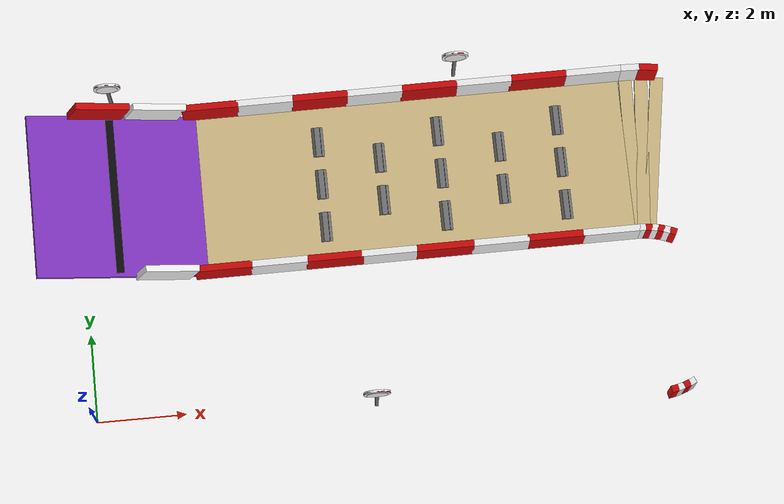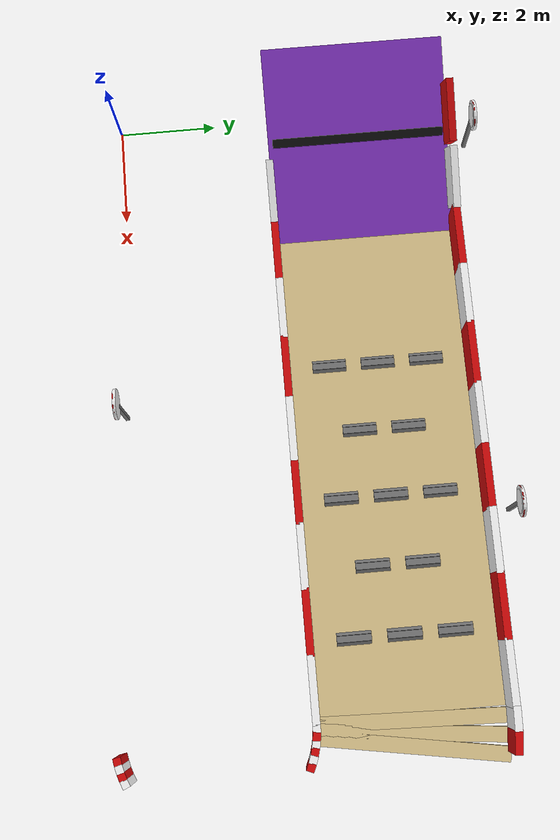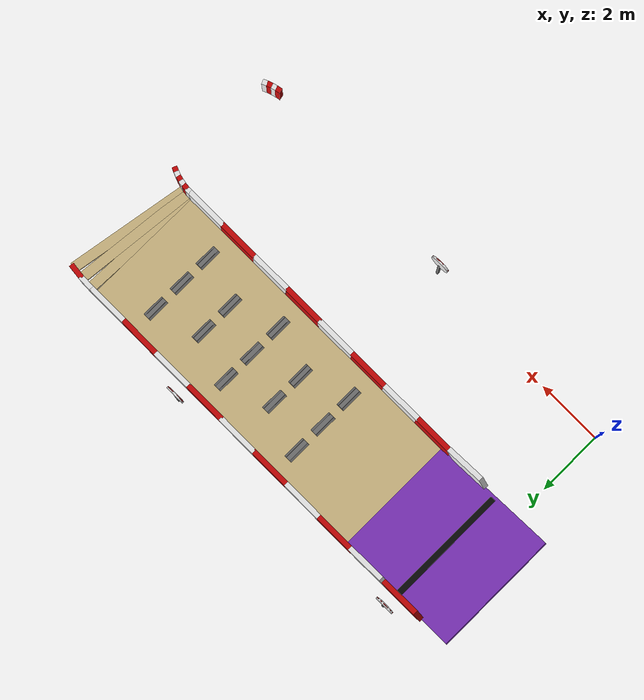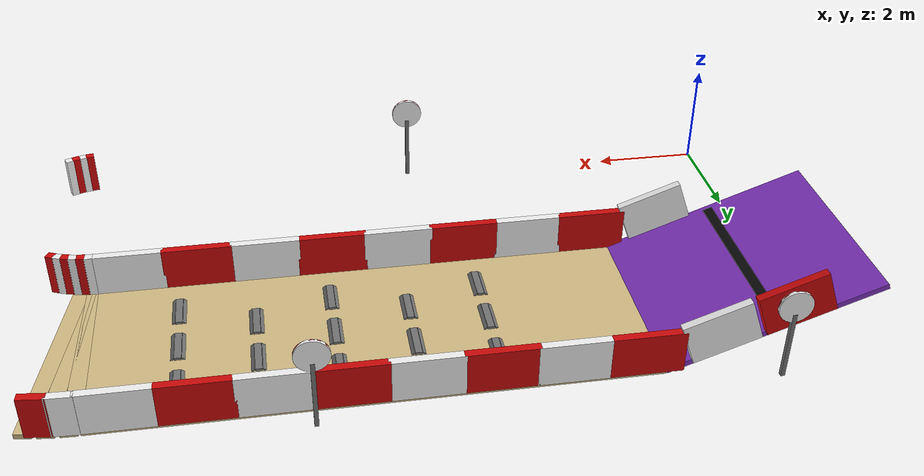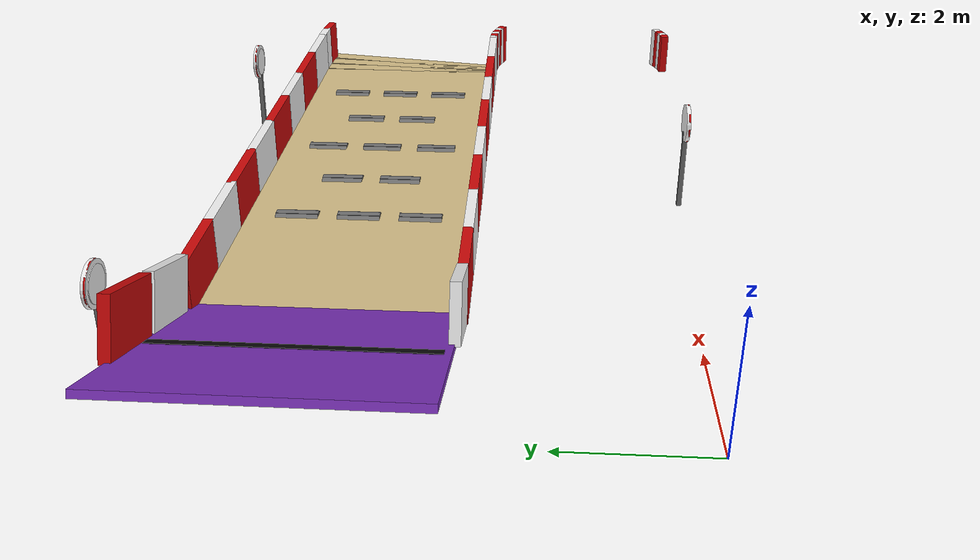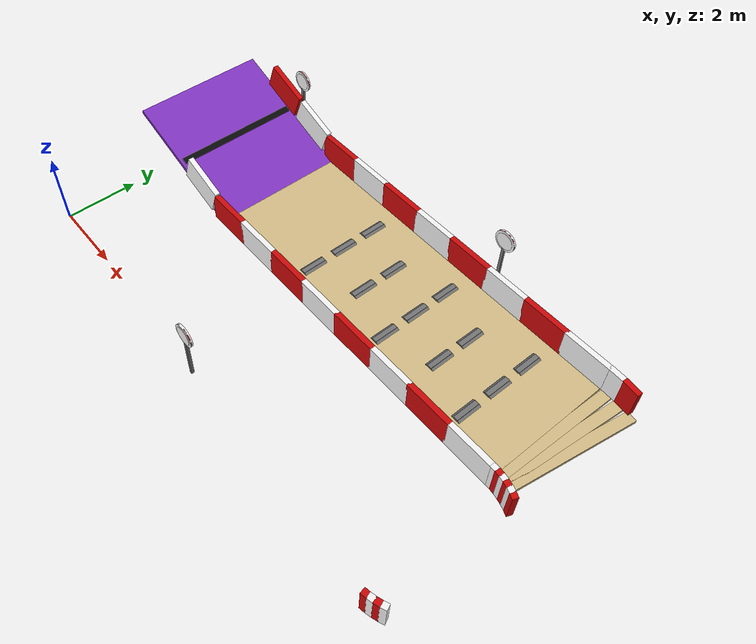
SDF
<sdf version="1.6">
 <world name="evrenos_teknofest_2026">
  <include><uri>model://sun</uri></include>
  <model name="main_course">
   <static>true</static>
   <link name="right_turn_road_45">
    <pose>13.110875 4.949875 -0.050000 0.000000 0.000000 2.977968</pose>
    <collision name="right_turn_road_45_collision">
     <geometry><box><size>0.294500 3.750000 0.100000</size></box></geometry>
    </collision>
    <visual name="right_turn_road_45_visual">
     <geometry><box><size>0.294500 3.750000 0.100000</size></box></geometry>
     <material><ambient>0.82 0.73 0.52 1</ambient><diffuse>0.82 0.73 0.52 1</diffuse></material>
    </visual>
   </link>
   <link name="right_turn_road_46">
    <pose>12.867625 4.982000 -0.050000 0.000000 0.000000 3.043418</pose>
    <collision name="right_turn_road_46_collision">
     <geometry><box><size>0.294500 3.750000 0.100000</size></box></geometry>
    </collision>
    <visual name="right_turn_road_46_visual">
     <geometry><box><size>0.294500 3.750000 0.100000</size></box></geometry>
     <material><ambient>0.82 0.73 0.52 1</ambient><diffuse>0.82 0.73 0.52 1</diffuse></material>
    </visual>
   </link>
   <link name="right_turn_road_47">
    <pose>12.622750 4.998000 -0.050000 0.000000 0.000000 3.108868</pose>
    <collision name="right_turn_road_47_collision">
     <geometry><box><size>0.294500 3.750000 0.100000</size></box></geometry>
    </collision>
    <visual name="right_turn_road_47_visual">
     <geometry><box><size>0.294500 3.750000 0.100000</size></box></geometry>
     <material><ambient>0.82 0.73 0.52 1</ambient><diffuse>0.82 0.73 0.52 1</diffuse></material>
    </visual>
   </link>
   <link name="top_rough_base_0">
    <pose>7.625000 5.000000 -0.050000 0.000000 0.000000 0.000000</pose>
    <collision name="top_rough_base_0_collision">
     <geometry><box><size>9.750000 3.750000 0.100000</size></box></geometry>
    </collision>
    <visual name="top_rough_base_0_visual">
     <geometry><box><size>9.750000 3.750000 0.100000</size></box></geometry>
     <material><ambient>0.82 0.73 0.52 1</ambient><diffuse>0.82 0.73 0.52 1</diffuse></material>
    </visual>
   </link>
   <link name="bump_0_up">
    <pose>10.906250 4.000000 0.012500 0.000000 -0.674741 0.000000</pose>
    <collision name="bump_0_up_collision">
     <geometry><box><size>0.080027 0.687500 0.025000</size></box></geometry>
    </collision>
    <visual name="bump_0_up_visual">
     <geometry><box><size>0.080027 0.687500 0.025000</size></box></geometry>
     <material><ambient>0.45 0.45 0.45 1</ambient><diffuse>0.45 0.45 0.45 1</diffuse></material>
    </visual>
   </link>
   <link name="bump_0_top">
    <pose>11.000000 4.000000 0.025000 0.000000 0.000000 0.000000</pose>
    <collision name="bump_0_top_collision">
     <geometry><box><size>0.125000 0.687500 0.050000</size></box></geometry>
    </collision>
    <visual name="bump_0_top_visual">
     <geometry><box><size>0.125000 0.687500 0.050000</size></box></geometry>
     <material><ambient>0.45 0.45 0.45 1</ambient><diffuse>0.45 0.45 0.45 1</diffuse></material>
    </visual>
   </link>
   <link name="bump_0_down">
    <pose>11.093750 4.000000 0.012500 0.000000 0.674741 0.000000</pose>
    <collision name="bump_0_down_collision">
     <geometry><box><size>0.080027 0.687500 0.025000</size></box></geometry>
    </collision>
    <visual name="bump_0_down_visual">
     <geometry><box><size>0.080027 0.687500 0.025000</size></box></geometry>
     <material><ambient>0.45 0.45 0.45 1</ambient><diffuse>0.45 0.45 0.45 1</diffuse></material>
    </visual>
   </link>
   <link name="bump_1_up">
    <pose>10.906250 5.000000 0.012500 0.000000 -0.674741 0.000000</pose>
    <collision name="bump_1_up_collision">
     <geometry><box><size>0.080027 0.687500 0.025000</size></box></geometry>
    </collision>
    <visual name="bump_1_up_visual">
     <geometry><box><size>0.080027 0.687500 0.025000</size></box></geometry>
     <material><ambient>0.45 0.45 0.45 1</ambient><diffuse>0.45 0.45 0.45 1</diffuse></material>
    </visual>
   </link>
   <link name="bump_1_top">
    <pose>11.000000 5.000000 0.025000 0.000000 0.000000 0.000000</pose>
    <collision name="bump_1_top_collision">
     <geometry><box><size>0.125000 0.687500 0.050000</size></box></geometry>
    </collision>
    <visual name="bump_1_top_visual">
     <geometry><box><size>0.125000 0.687500 0.050000</size></box></geometry>
     <material><ambient>0.45 0.45 0.45 1</ambient><diffuse>0.45 0.45 0.45 1</diffuse></material>
    </visual>
   </link>
   <link name="bump_1_down">
    <pose>11.093750 5.000000 0.012500 0.000000 0.674741 0.000000</pose>
    <collision name="bump_1_down_collision">
     <geometry><box><size>0.080027 0.687500 0.025000</size></box></geometry>
    </collision>
    <visual name="bump_1_down_visual">
     <geometry><box><size>0.080027 0.687500 0.025000</size></box></geometry>
     <material><ambient>0.45 0.45 0.45 1</ambient><diffuse>0.45 0.45 0.45 1</diffuse></material>
    </visual>
   </link>
   <link name="bump_2_up">
    <pose>10.906250 6.000000 0.012500 0.000000 -0.674741 0.000000</pose>
    <collision name="bump_2_up_collision">
     <geometry><box><size>0.080027 0.687500 0.025000</size></box></geometry>
    </collision>
    <visual name="bump_2_up_visual">
     <geometry><box><size>0.080027 0.687500 0.025000</size></box></geometry>
     <material><ambient>0.45 0.45 0.45 1</ambient><diffuse>0.45 0.45 0.45 1</diffuse></material>
    </visual>
   </link>
   <link name="bump_2_top">
    <pose>11.000000 6.000000 0.025000 0.000000 0.000000 0.000000</pose>
    <collision name="bump_2_top_collision">
     <geometry><box><size>0.125000 0.687500 0.050000</size></box></geometry>
    </collision>
    <visual name="bump_2_top_visual">
     <geometry><box><size>0.125000 0.687500 0.050000</size></box></geometry>
     <material><ambient>0.45 0.45 0.45 1</ambient><diffuse>0.45 0.45 0.45 1</diffuse></material>
    </visual>
   </link>
   <link name="bump_2_down">
    <pose>11.093750 6.000000 0.012500 0.000000 0.674741 0.000000</pose>
    <collision name="bump_2_down_collision">
     <geometry><box><size>0.080027 0.687500 0.025000</size></box></geometry>
    </collision>
    <visual name="bump_2_down_visual">
     <geometry><box><size>0.080027 0.687500 0.025000</size></box></geometry>
     <material><ambient>0.45 0.45 0.45 1</ambient><diffuse>0.45 0.45 0.45 1</diffuse></material>
    </visual>
   </link>
   <link name="bump_3_up">
    <pose>9.531250 4.500000 0.012500 0.000000 -0.674741 0.000000</pose>
    <collision name="bump_3_up_collision">
     <geometry><box><size>0.080027 0.687500 0.025000</size></box></geometry>
    </collision>
    <visual name="bump_3_up_visual">
     <geometry><box><size>0.080027 0.687500 0.025000</size></box></geometry>
     <material><ambient>0.45 0.45 0.45 1</ambient><diffuse>0.45 0.45 0.45 1</diffuse></material>
    </visual>
   </link>
   <link name="bump_3_top">
    <pose>9.625000 4.500000 0.025000 0.000000 0.000000 0.000000</pose>
    <collision name="bump_3_top_collision">
     <geometry><box><size>0.125000 0.687500 0.050000</size></box></geometry>
    </collision>
    <visual name="bump_3_top_visual">
     <geometry><box><size>0.125000 0.687500 0.050000</size></box></geometry>
     <material><ambient>0.45 0.45 0.45 1</ambient><diffuse>0.45 0.45 0.45 1</diffuse></material>
    </visual>
   </link>
   <link name="bump_3_down">
    <pose>9.718750 4.500000 0.012500 0.000000 0.674741 0.000000</pose>
    <collision name="bump_3_down_collision">
     <geometry><box><size>0.080027 0.687500 0.025000</size></box></geometry>
    </collision>
    <visual name="bump_3_down_visual">
     <geometry><box><size>0.080027 0.687500 0.025000</size></box></geometry>
     <material><ambient>0.45 0.45 0.45 1</ambient><diffuse>0.45 0.45 0.45 1</diffuse></material>
    </visual>
   </link>
   <link name="bump_4_up">
    <pose>9.531250 5.500000 0.012500 0.000000 -0.674741 0.000000</pose>
    <collision name="bump_4_up_collision">
     <geometry><box><size>0.080027 0.687500 0.025000</size></box></geometry>
    </collision>
    <visual name="bump_4_up_visual">
     <geometry><box><size>0.080027 0.687500 0.025000</size></box></geometry>
     <material><ambient>0.45 0.45 0.45 1</ambient><diffuse>0.45 0.45 0.45 1</diffuse></material>
    </visual>
   </link>
   <link name="bump_4_top">
    <pose>9.625000 5.500000 0.025000 0.000000 0.000000 0.000000</pose>
    <collision name="bump_4_top_collision">
     <geometry><box><size>0.125000 0.687500 0.050000</size></box></geometry>
    </collision>
    <visual name="bump_4_top_visual">
     <geometry><box><size>0.125000 0.687500 0.050000</size></box></geometry>
     <material><ambient>0.45 0.45 0.45 1</ambient><diffuse>0.45 0.45 0.45 1</diffuse></material>
    </visual>
   </link>
   <link name="bump_4_down">
    <pose>9.718750 5.500000 0.012500 0.000000 0.674741 0.000000</pose>
    <collision name="bump_4_down_collision">
     <geometry><box><size>0.080027 0.687500 0.025000</size></box></geometry>
    </collision>
    <visual name="bump_4_down_visual">
     <geometry><box><size>0.080027 0.687500 0.025000</size></box></geometry>
     <material><ambient>0.45 0.45 0.45 1</ambient><diffuse>0.45 0.45 0.45 1</diffuse></material>
    </visual>
   </link>
   <link name="bump_5_up">
    <pose>8.156250 4.000000 0.012500 0.000000 -0.674741 0.000000</pose>
    <collision name="bump_5_up_collision">
     <geometry><box><size>0.080027 0.687500 0.025000</size></box></geometry>
    </collision>
    <visual name="bump_5_up_visual">
     <geometry><box><size>0.080027 0.687500 0.025000</size></box></geometry>
     <material><ambient>0.45 0.45 0.45 1</ambient><diffuse>0.45 0.45 0.45 1</diffuse></material>
    </visual>
   </link>
   <link name="bump_5_top">
    <pose>8.250000 4.000000 0.025000 0.000000 0.000000 0.000000</pose>
    <collision name="bump_5_top_collision">
     <geometry><box><size>0.125000 0.687500 0.050000</size></box></geometry>
    </collision>
    <visual name="bump_5_top_visual">
     <geometry><box><size>0.125000 0.687500 0.050000</size></box></geometry>
     <material><ambient>0.45 0.45 0.45 1</ambient><diffuse>0.45 0.45 0.45 1</diffuse></material>
    </visual>
   </link>
   <link name="bump_5_down">
    <pose>8.343750 4.000000 0.012500 0.000000 0.674741 0.000000</pose>
    <collision name="bump_5_down_collision">
     <geometry><box><size>0.080027 0.687500 0.025000</size></box></geometry>
    </collision>
    <visual name="bump_5_down_visual">
     <geometry><box><size>0.080027 0.687500 0.025000</size></box></geometry>
     <material><ambient>0.45 0.45 0.45 1</ambient><diffuse>0.45 0.45 0.45 1</diffuse></material>
    </visual>
   </link>
   <link name="bump_6_up">
    <pose>8.156250 5.000000 0.012500 0.000000 -0.674741 0.000000</pose>
    <collision name="bump_6_up_collision">
     <geometry><box><size>0.080027 0.687500 0.025000</size></box></geometry>
    </collision>
    <visual name="bump_6_up_visual">
     <geometry><box><size>0.080027 0.687500 0.025000</size></box></geometry>
     <material><ambient>0.45 0.45 0.45 1</ambient><diffuse>0.45 0.45 0.45 1</diffuse></material>
    </visual>
   </link>
   <link name="bump_6_top">
    <pose>8.250000 5.000000 0.025000 0.000000 0.000000 0.000000</pose>
    <collision name="bump_6_top_collision">
     <geometry><box><size>0.125000 0.687500 0.050000</size></box></geometry>
    </collision>
    <visual name="bump_6_top_visual">
     <geometry><box><size>0.125000 0.687500 0.050000</size></box></geometry>
     <material><ambient>0.45 0.45 0.45 1</ambient><diffuse>0.45 0.45 0.45 1</diffuse></material>
    </visual>
   </link>
   <link name="bump_6_down">
    <pose>8.343750 5.000000 0.012500 0.000000 0.674741 0.000000</pose>
    <collision name="bump_6_down_collision">
     <geometry><box><size>0.080027 0.687500 0.025000</size></box></geometry>
    </collision>
    <visual name="bump_6_down_visual">
     <geometry><box><size>0.080027 0.687500 0.025000</size></box></geometry>
     <material><ambient>0.45 0.45 0.45 1</ambient><diffuse>0.45 0.45 0.45 1</diffuse></material>
    </visual>
   </link>
   <link name="bump_7_up">
    <pose>8.156250 6.000000 0.012500 0.000000 -0.674741 0.000000</pose>
    <collision name="bump_7_up_collision">
     <geometry><box><size>0.080027 0.687500 0.025000</size></box></geometry>
    </collision>
    <visual name="bump_7_up_visual">
     <geometry><box><size>0.080027 0.687500 0.025000</size></box></geometry>
     <material><ambient>0.45 0.45 0.45 1</ambient><diffuse>0.45 0.45 0.45 1</diffuse></material>
    </visual>
   </link>
   <link name="bump_7_top">
    <pose>8.250000 6.000000 0.025000 0.000000 0.000000 0.000000</pose>
    <collision name="bump_7_top_collision">
     <geometry><box><size>0.125000 0.687500 0.050000</size></box></geometry>
    </collision>
    <visual name="bump_7_top_visual">
     <geometry><box><size>0.125000 0.687500 0.050000</size></box></geometry>
     <material><ambient>0.45 0.45 0.45 1</ambient><diffuse>0.45 0.45 0.45 1</diffuse></material>
    </visual>
   </link>
   <link name="bump_7_down">
    <pose>8.343750 6.000000 0.012500 0.000000 0.674741 0.000000</pose>
    <collision name="bump_7_down_collision">
     <geometry><box><size>0.080027 0.687500 0.025000</size></box></geometry>
    </collision>
    <visual name="bump_7_down_visual">
     <geometry><box><size>0.080027 0.687500 0.025000</size></box></geometry>
     <material><ambient>0.45 0.45 0.45 1</ambient><diffuse>0.45 0.45 0.45 1</diffuse></material>
    </visual>
   </link>
   <link name="bump_8_up">
    <pose>6.781250 4.500000 0.012500 0.000000 -0.674741 0.000000</pose>
    <collision name="bump_8_up_collision">
     <geometry><box><size>0.080027 0.687500 0.025000</size></box></geometry>
    </collision>
    <visual name="bump_8_up_visual">
     <geometry><box><size>0.080027 0.687500 0.025000</size></box></geometry>
     <material><ambient>0.45 0.45 0.45 1</ambient><diffuse>0.45 0.45 0.45 1</diffuse></material>
    </visual>
   </link>
   <link name="bump_8_top">
    <pose>6.875000 4.500000 0.025000 0.000000 0.000000 0.000000</pose>
    <collision name="bump_8_top_collision">
     <geometry><box><size>0.125000 0.687500 0.050000</size></box></geometry>
    </collision>
    <visual name="bump_8_top_visual">
     <geometry><box><size>0.125000 0.687500 0.050000</size></box></geometry>
     <material><ambient>0.45 0.45 0.45 1</ambient><diffuse>0.45 0.45 0.45 1</diffuse></material>
    </visual>
   </link>
   <link name="bump_8_down">
    <pose>6.968750 4.500000 0.012500 0.000000 0.674741 0.000000</pose>
    <collision name="bump_8_down_collision">
     <geometry><box><size>0.080027 0.687500 0.025000</size></box></geometry>
    </collision>
    <visual name="bump_8_down_visual">
     <geometry><box><size>0.080027 0.687500 0.025000</size></box></geometry>
     <material><ambient>0.45 0.45 0.45 1</ambient><diffuse>0.45 0.45 0.45 1</diffuse></material>
    </visual>
   </link>
   <link name="bump_9_up">
    <pose>6.781250 5.500000 0.012500 0.000000 -0.674741 0.000000</pose>
    <collision name="bump_9_up_collision">
     <geometry><box><size>0.080027 0.687500 0.025000</size></box></geometry>
    </collision>
    <visual name="bump_9_up_visual">
     <geometry><box><size>0.080027 0.687500 0.025000</size></box></geometry>
     <material><ambient>0.45 0.45 0.45 1</ambient><diffuse>0.45 0.45 0.45 1</diffuse></material>
    </visual>
   </link>
   <link name="bump_9_top">
    <pose>6.875000 5.500000 0.025000 0.000000 0.000000 0.000000</pose>
    <collision name="bump_9_top_collision">
     <geometry><box><size>0.125000 0.687500 0.050000</size></box></geometry>
    </collision>
    <visual name="bump_9_top_visual">
     <geometry><box><size>0.125000 0.687500 0.050000</size></box></geometry>
     <material><ambient>0.45 0.45 0.45 1</ambient><diffuse>0.45 0.45 0.45 1</diffuse></material>
    </visual>
   </link>
   <link name="bump_9_down">
    <pose>6.968750 5.500000 0.012500 0.000000 0.674741 0.000000</pose>
    <collision name="bump_9_down_collision">
     <geometry><box><size>0.080027 0.687500 0.025000</size></box></geometry>
    </collision>
    <visual name="bump_9_down_visual">
     <geometry><box><size>0.080027 0.687500 0.025000</size></box></geometry>
     <material><ambient>0.45 0.45 0.45 1</ambient><diffuse>0.45 0.45 0.45 1</diffuse></material>
    </visual>
   </link>
   <link name="bump_10_up">
    <pose>5.406250 4.000000 0.012500 0.000000 -0.674741 0.000000</pose>
    <collision name="bump_10_up_collision">
     <geometry><box><size>0.080027 0.687500 0.025000</size></box></geometry>
    </collision>
    <visual name="bump_10_up_visual">
     <geometry><box><size>0.080027 0.687500 0.025000</size></box></geometry>
     <material><ambient>0.45 0.45 0.45 1</ambient><diffuse>0.45 0.45 0.45 1</diffuse></material>
    </visual>
   </link>
   <link name="bump_10_top">
    <pose>5.500000 4.000000 0.025000 0.000000 0.000000 0.000000</pose>
    <collision name="bump_10_top_collision">
     <geometry><box><size>0.125000 0.687500 0.050000</size></box></geometry>
    </collision>
    <visual name="bump_10_top_visual">
     <geometry><box><size>0.125000 0.687500 0.050000</size></box></geometry>
     <material><ambient>0.45 0.45 0.45 1</ambient><diffuse>0.45 0.45 0.45 1</diffuse></material>
    </visual>
   </link>
   <link name="bump_10_down">
    <pose>5.593750 4.000000 0.012500 0.000000 0.674741 0.000000</pose>
    <collision name="bump_10_down_collision">
     <geometry><box><size>0.080027 0.687500 0.025000</size></box></geometry>
    </collision>
    <visual name="bump_10_down_visual">
     <geometry><box><size>0.080027 0.687500 0.025000</size></box></geometry>
     <material><ambient>0.45 0.45 0.45 1</ambient><diffuse>0.45 0.45 0.45 1</diffuse></material>
    </visual>
   </link>
   <link name="bump_11_up">
    <pose>5.406250 5.000000 0.012500 0.000000 -0.674741 0.000000</pose>
    <collision name="bump_11_up_collision">
     <geometry><box><size>0.080027 0.687500 0.025000</size></box></geometry>
    </collision>
    <visual name="bump_11_up_visual">
     <geometry><box><size>0.080027 0.687500 0.025000</size></box></geometry>
     <material><ambient>0.45 0.45 0.45 1</ambient><diffuse>0.45 0.45 0.45 1</diffuse></material>
    </visual>
   </link>
   <link name="bump_11_top">
    <pose>5.500000 5.000000 0.025000 0.000000 0.000000 0.000000</pose>
    <collision name="bump_11_top_collision">
     <geometry><box><size>0.125000 0.687500 0.050000</size></box></geometry>
    </collision>
    <visual name="bump_11_top_visual">
     <geometry><box><size>0.125000 0.687500 0.050000</size></box></geometry>
     <material><ambient>0.45 0.45 0.45 1</ambient><diffuse>0.45 0.45 0.45 1</diffuse></material>
    </visual>
   </link>
   <link name="bump_11_down">
    <pose>5.593750 5.000000 0.012500 0.000000 0.674741 0.000000</pose>
    <collision name="bump_11_down_collision">
     <geometry><box><size>0.080027 0.687500 0.025000</size></box></geometry>
    </collision>
    <visual name="bump_11_down_visual">
     <geometry><box><size>0.080027 0.687500 0.025000</size></box></geometry>
     <material><ambient>0.45 0.45 0.45 1</ambient><diffuse>0.45 0.45 0.45 1</diffuse></material>
    </visual>
   </link>
   <link name="bump_12_up">
    <pose>5.406250 6.000000 0.012500 0.000000 -0.674741 0.000000</pose>
    <collision name="bump_12_up_collision">
     <geometry><box><size>0.080027 0.687500 0.025000</size></box></geometry>
    </collision>
    <visual name="bump_12_up_visual">
     <geometry><box><size>0.080027 0.687500 0.025000</size></box></geometry>
     <material><ambient>0.45 0.45 0.45 1</ambient><diffuse>0.45 0.45 0.45 1</diffuse></material>
    </visual>
   </link>
   <link name="bump_12_top">
    <pose>5.500000 6.000000 0.025000 0.000000 0.000000 0.000000</pose>
    <collision name="bump_12_top_collision">
     <geometry><box><size>0.125000 0.687500 0.050000</size></box></geometry>
    </collision>
    <visual name="bump_12_top_visual">
     <geometry><box><size>0.125000 0.687500 0.050000</size></box></geometry>
     <material><ambient>0.45 0.45 0.45 1</ambient><diffuse>0.45 0.45 0.45 1</diffuse></material>
    </visual>
   </link>
   <link name="bump_12_down">
    <pose>5.593750 6.000000 0.012500 0.000000 0.674741 0.000000</pose>
    <collision name="bump_12_down_collision">
     <geometry><box><size>0.080027 0.687500 0.025000</size></box></geometry>
    </collision>
    <visual name="bump_12_down_visual">
     <geometry><box><size>0.080027 0.687500 0.025000</size></box></geometry>
     <material><ambient>0.45 0.45 0.45 1</ambient><diffuse>0.45 0.45 0.45 1</diffuse></material>
    </visual>
   </link>
   <link name="steep_up">
    <pose>0.875000 5.000000 0.633600 0.000000 0.349605 0.000000</pose>
    <collision name="steep_up_collision">
     <geometry><box><size>3.991398 3.750000 0.100000</size></box></geometry>
    </collision>
    <visual name="steep_up_visual">
     <geometry><box><size>3.991398 3.750000 0.100000</size></box></geometry>
     <material><ambient>0.5 0.2 0.75 1</ambient><diffuse>0.5 0.2 0.75 1</diffuse></material>
    </visual>
   </link>
   <link name="stop_strip_up">
    <pose>0.812500 5.000000 0.703600 0.000000 0.349605 0.000000</pose>
    <visual name="stop_strip_up_visual">
     <geometry><box><size>0.181603 3.562500 0.030000</size></box></geometry>
     <material><ambient>0.04 0.04 0.04 1</ambient><diffuse>0.04 0.04 0.04 1</diffuse></material>
    </visual>
   </link>
   <link name="right_turn_bar_0_2">
    <pose>12.848625 -0.592250 0.400000 0.000000 0.000000 0.187000</pose>
    <collision name="right_turn_bar_0_2_collision">
     <geometry><box><size>0.154250 0.150000 0.800000</size></box></geometry>
    </collision>
    <visual name="right_turn_bar_0_2_visual">
     <geometry><box><size>0.154250 0.150000 0.800000</size></box></geometry>
     <material><ambient>0.8 0.03 0.03 1</ambient><diffuse>0.8 0.03 0.03 1</diffuse></material>
    </visual>
   </link>
   <link name="right_turn_bar_0_3">
    <pose>12.985250 -0.561125 0.400000 0.000000 0.000000 0.261799</pose>
    <collision name="right_turn_bar_0_3_collision">
     <geometry><box><size>0.154250 0.150000 0.800000</size></box></geometry>
    </collision>
    <visual name="right_turn_bar_0_3_visual">
     <geometry><box><size>0.154250 0.150000 0.800000</size></box></geometry>
     <material><ambient>0.95 0.95 0.95 1</ambient><diffuse>0.95 0.95 0.95 1</diffuse></material>
    </visual>
   </link>
   <link name="right_turn_bar_0_4">
    <pose>13.119250 -0.519750 0.400000 0.000000 0.000000 0.336599</pose>
    <collision name="right_turn_bar_0_4_collision">
     <geometry><box><size>0.154250 0.150000 0.800000</size></box></geometry>
    </collision>
    <visual name="right_turn_bar_0_4_visual">
     <geometry><box><size>0.154250 0.150000 0.800000</size></box></geometry>
     <material><ambient>0.8 0.03 0.03 1</ambient><diffuse>0.8 0.03 0.03 1</diffuse></material>
    </visual>
   </link>
   <link name="right_turn_bar_0_5">
    <pose>13.249750 -0.468500 0.400000 0.000000 0.000000 0.411399</pose>
    <collision name="right_turn_bar_0_5_collision">
     <geometry><box><size>0.154250 0.150000 0.800000</size></box></geometry>
    </collision>
    <visual name="right_turn_bar_0_5_visual">
     <geometry><box><size>0.154250 0.150000 0.800000</size></box></geometry>
     <material><ambient>0.95 0.95 0.95 1</ambient><diffuse>0.95 0.95 0.95 1</diffuse></material>
    </visual>
   </link>
   <link name="right_turn_bar_0_36">
    <pose>13.249750 2.968500 0.400000 0.000000 0.000000 2.730194</pose>
    <collision name="right_turn_bar_0_36_collision">
     <geometry><box><size>0.154250 0.150000 0.800000</size></box></geometry>
    </collision>
    <visual name="right_turn_bar_0_36_visual">
     <geometry><box><size>0.154250 0.150000 0.800000</size></box></geometry>
     <material><ambient>0.8 0.03 0.03 1</ambient><diffuse>0.8 0.03 0.03 1</diffuse></material>
    </visual>
   </link>
   <link name="right_turn_bar_0_37">
    <pose>13.119250 3.019750 0.400000 0.000000 0.000000 2.804993</pose>
    <collision name="right_turn_bar_0_37_collision">
     <geometry><box><size>0.154250 0.150000 0.800000</size></box></geometry>
    </collision>
    <visual name="right_turn_bar_0_37_visual">
     <geometry><box><size>0.154250 0.150000 0.800000</size></box></geometry>
     <material><ambient>0.95 0.95 0.95 1</ambient><diffuse>0.95 0.95 0.95 1</diffuse></material>
    </visual>
   </link>
   <link name="right_turn_bar_0_38">
    <pose>12.985250 3.061125 0.400000 0.000000 0.000000 2.879793</pose>
    <collision name="right_turn_bar_0_38_collision">
     <geometry><box><size>0.154250 0.150000 0.800000</size></box></geometry>
    </collision>
    <visual name="right_turn_bar_0_38_visual">
     <geometry><box><size>0.154250 0.150000 0.800000</size></box></geometry>
     <material><ambient>0.8 0.03 0.03 1</ambient><diffuse>0.8 0.03 0.03 1</diffuse></material>
    </visual>
   </link>
   <link name="right_turn_bar_0_39">
    <pose>12.848625 3.092250 0.400000 0.000000 0.000000 2.954593</pose>
    <collision name="right_turn_bar_0_39_collision">
     <geometry><box><size>0.154250 0.150000 0.800000</size></box></geometry>
    </collision>
    <visual name="right_turn_bar_0_39_visual">
     <geometry><box><size>0.154250 0.150000 0.800000</size></box></geometry>
     <material><ambient>0.95 0.95 0.95 1</ambient><diffuse>0.95 0.95 0.95 1</diffuse></material>
    </visual>
   </link>
   <link name="right_turn_bar_0_40">
    <pose>12.709875 3.113250 0.400000 0.000000 0.000000 3.029393</pose>
    <collision name="right_turn_bar_0_40_collision">
     <geometry><box><size>0.154250 0.150000 0.800000</size></box></geometry>
    </collision>
    <visual name="right_turn_bar_0_40_visual">
     <geometry><box><size>0.154250 0.150000 0.800000</size></box></geometry>
     <material><ambient>0.8 0.03 0.03 1</ambient><diffuse>0.8 0.03 0.03 1</diffuse></material>
    </visual>
   </link>
   <link name="right_turn_bar_0_41">
    <pose>12.570125 3.123750 0.400000 0.000000 0.000000 3.104193</pose>
    <collision name="right_turn_bar_0_41_collision">
     <geometry><box><size>0.154250 0.150000 0.800000</size></box></geometry>
    </collision>
    <visual name="right_turn_bar_0_41_visual">
     <geometry><box><size>0.154250 0.150000 0.800000</size></box></geometry>
     <material><ambient>0.95 0.95 0.95 1</ambient><diffuse>0.95 0.95 0.95 1</diffuse></material>
    </visual>
   </link>
   <link name="right_turn_bar_1_40">
    <pose>13.129750 6.839625 0.400000 0.000000 0.000000 3.029393</pose>
    <collision name="right_turn_bar_1_40_collision">
     <geometry><box><size>0.462875 0.150000 0.800000</size></box></geometry>
    </collision>
    <visual name="right_turn_bar_1_40_visual">
     <geometry><box><size>0.462875 0.150000 0.800000</size></box></geometry>
     <material><ambient>0.8 0.03 0.03 1</ambient><diffuse>0.8 0.03 0.03 1</diffuse></material>
    </visual>
   </link>
   <link name="right_turn_bar_1_41">
    <pose>12.710375 6.871125 0.400000 0.000000 0.000000 3.104193</pose>
    <collision name="right_turn_bar_1_41_collision">
     <geometry><box><size>0.462875 0.150000 0.800000</size></box></geometry>
    </collision>
    <visual name="right_turn_bar_1_41_visual">
     <geometry><box><size>0.462875 0.150000 0.800000</size></box></geometry>
     <material><ambient>0.95 0.95 0.95 1</ambient><diffuse>0.95 0.95 0.95 1</diffuse></material>
    </visual>
   </link>
   <link name="top_bar_-1_11">
    <pose>1.875000 3.125000 0.719000 0.000000 0.349605 0.000000</pose>
    <collision name="top_bar_-1_11_collision">
     <geometry><box><size>1.247009 0.150000 0.800000</size></box></geometry>
    </collision>
    <visual name="top_bar_-1_11_visual">
     <geometry><box><size>1.247009 0.150000 0.800000</size></box></geometry>
     <material><ambient>0.95 0.95 0.95 1</ambient><diffuse>0.95 0.95 0.95 1</diffuse></material>
    </visual>
   </link>
   <link name="top_bar_-1_12">
    <pose>3.125000 3.125000 0.400000 0.000000 0.000000 0.000000</pose>
    <collision name="top_bar_-1_12_collision">
     <geometry><box><size>1.287500 0.150000 0.800000</size></box></geometry>
    </collision>
    <visual name="top_bar_-1_12_visual">
     <geometry><box><size>1.287500 0.150000 0.800000</size></box></geometry>
     <material><ambient>0.8 0.03 0.03 1</ambient><diffuse>0.8 0.03 0.03 1</diffuse></material>
    </visual>
   </link>
   <link name="top_bar_-1_13">
    <pose>4.375000 3.125000 0.400000 0.000000 0.000000 0.000000</pose>
    <collision name="top_bar_-1_13_collision">
     <geometry><box><size>1.287500 0.150000 0.800000</size></box></geometry>
    </collision>
    <visual name="top_bar_-1_13_visual">
     <geometry><box><size>1.287500 0.150000 0.800000</size></box></geometry>
     <material><ambient>0.95 0.95 0.95 1</ambient><diffuse>0.95 0.95 0.95 1</diffuse></material>
    </visual>
   </link>
   <link name="top_bar_-1_14">
    <pose>5.625000 3.125000 0.400000 0.000000 0.000000 0.000000</pose>
    <collision name="top_bar_-1_14_collision">
     <geometry><box><size>1.287500 0.150000 0.800000</size></box></geometry>
    </collision>
    <visual name="top_bar_-1_14_visual">
     <geometry><box><size>1.287500 0.150000 0.800000</size></box></geometry>
     <material><ambient>0.8 0.03 0.03 1</ambient><diffuse>0.8 0.03 0.03 1</diffuse></material>
    </visual>
   </link>
   <link name="top_bar_-1_15">
    <pose>6.875000 3.125000 0.400000 0.000000 0.000000 0.000000</pose>
    <collision name="top_bar_-1_15_collision">
     <geometry><box><size>1.287500 0.150000 0.800000</size></box></geometry>
    </collision>
    <visual name="top_bar_-1_15_visual">
     <geometry><box><size>1.287500 0.150000 0.800000</size></box></geometry>
     <material><ambient>0.95 0.95 0.95 1</ambient><diffuse>0.95 0.95 0.95 1</diffuse></material>
    </visual>
   </link>
   <link name="top_bar_-1_16">
    <pose>8.125000 3.125000 0.400000 0.000000 0.000000 0.000000</pose>
    <collision name="top_bar_-1_16_collision">
     <geometry><box><size>1.287500 0.150000 0.800000</size></box></geometry>
    </collision>
    <visual name="top_bar_-1_16_visual">
     <geometry><box><size>1.287500 0.150000 0.800000</size></box></geometry>
     <material><ambient>0.8 0.03 0.03 1</ambient><diffuse>0.8 0.03 0.03 1</diffuse></material>
    </visual>
   </link>
   <link name="top_bar_-1_17">
    <pose>9.375000 3.125000 0.400000 0.000000 0.000000 0.000000</pose>
    <collision name="top_bar_-1_17_collision">
     <geometry><box><size>1.287500 0.150000 0.800000</size></box></geometry>
    </collision>
    <visual name="top_bar_-1_17_visual">
     <geometry><box><size>1.287500 0.150000 0.800000</size></box></geometry>
     <material><ambient>0.95 0.95 0.95 1</ambient><diffuse>0.95 0.95 0.95 1</diffuse></material>
    </visual>
   </link>
   <link name="top_bar_-1_18">
    <pose>10.625000 3.125000 0.400000 0.000000 0.000000 0.000000</pose>
    <collision name="top_bar_-1_18_collision">
     <geometry><box><size>1.287500 0.150000 0.800000</size></box></geometry>
    </collision>
    <visual name="top_bar_-1_18_visual">
     <geometry><box><size>1.287500 0.150000 0.800000</size></box></geometry>
     <material><ambient>0.8 0.03 0.03 1</ambient><diffuse>0.8 0.03 0.03 1</diffuse></material>
    </visual>
   </link>
   <link name="top_bar_-1_19">
    <pose>11.875000 3.125000 0.400000 0.000000 0.000000 0.000000</pose>
    <collision name="top_bar_-1_19_collision">
     <geometry><box><size>1.287500 0.150000 0.800000</size></box></geometry>
    </collision>
    <visual name="top_bar_-1_19_visual">
     <geometry><box><size>1.287500 0.150000 0.800000</size></box></geometry>
     <material><ambient>0.95 0.95 0.95 1</ambient><diffuse>0.95 0.95 0.95 1</diffuse></material>
    </visual>
   </link>
   <link name="top_bar_1_10">
    <pose>0.625000 6.875000 1.174700 0.000000 0.349605 0.000000</pose>
    <collision name="top_bar_1_10_collision">
     <geometry><box><size>1.247009 0.150000 0.800000</size></box></geometry>
    </collision>
    <visual name="top_bar_1_10_visual">
     <geometry><box><size>1.247009 0.150000 0.800000</size></box></geometry>
     <material><ambient>0.8 0.03 0.03 1</ambient><diffuse>0.8 0.03 0.03 1</diffuse></material>
    </visual>
   </link>
   <link name="top_bar_1_11">
    <pose>1.875000 6.875000 0.719000 0.000000 0.349605 0.000000</pose>
    <collision name="top_bar_1_11_collision">
     <geometry><box><size>1.247009 0.150000 0.800000</size></box></geometry>
    </collision>
    <visual name="top_bar_1_11_visual">
     <geometry><box><size>1.247009 0.150000 0.800000</size></box></geometry>
     <material><ambient>0.95 0.95 0.95 1</ambient><diffuse>0.95 0.95 0.95 1</diffuse></material>
    </visual>
   </link>
   <link name="top_bar_1_12">
    <pose>3.125000 6.875000 0.400000 0.000000 0.000000 0.000000</pose>
    <collision name="top_bar_1_12_collision">
     <geometry><box><size>1.287500 0.150000 0.800000</size></box></geometry>
    </collision>
    <visual name="top_bar_1_12_visual">
     <geometry><box><size>1.287500 0.150000 0.800000</size></box></geometry>
     <material><ambient>0.8 0.03 0.03 1</ambient><diffuse>0.8 0.03 0.03 1</diffuse></material>
    </visual>
   </link>
   <link name="top_bar_1_13">
    <pose>4.375000 6.875000 0.400000 0.000000 0.000000 0.000000</pose>
    <collision name="top_bar_1_13_collision">
     <geometry><box><size>1.287500 0.150000 0.800000</size></box></geometry>
    </collision>
    <visual name="top_bar_1_13_visual">
     <geometry><box><size>1.287500 0.150000 0.800000</size></box></geometry>
     <material><ambient>0.95 0.95 0.95 1</ambient><diffuse>0.95 0.95 0.95 1</diffuse></material>
    </visual>
   </link>
   <link name="top_bar_1_14">
    <pose>5.625000 6.875000 0.400000 0.000000 0.000000 0.000000</pose>
    <collision name="top_bar_1_14_collision">
     <geometry><box><size>1.287500 0.150000 0.800000</size></box></geometry>
    </collision>
    <visual name="top_bar_1_14_visual">
     <geometry><box><size>1.287500 0.150000 0.800000</size></box></geometry>
     <material><ambient>0.8 0.03 0.03 1</ambient><diffuse>0.8 0.03 0.03 1</diffuse></material>
    </visual>
   </link>
   <link name="top_bar_1_15">
    <pose>6.875000 6.875000 0.400000 0.000000 0.000000 0.000000</pose>
    <collision name="top_bar_1_15_collision">
     <geometry><box><size>1.287500 0.150000 0.800000</size></box></geometry>
    </collision>
    <visual name="top_bar_1_15_visual">
     <geometry><box><size>1.287500 0.150000 0.800000</size></box></geometry>
     <material><ambient>0.95 0.95 0.95 1</ambient><diffuse>0.95 0.95 0.95 1</diffuse></material>
    </visual>
   </link>
   <link name="top_bar_1_16">
    <pose>8.125000 6.875000 0.400000 0.000000 0.000000 0.000000</pose>
    <collision name="top_bar_1_16_collision">
     <geometry><box><size>1.287500 0.150000 0.800000</size></box></geometry>
    </collision>
    <visual name="top_bar_1_16_visual">
     <geometry><box><size>1.287500 0.150000 0.800000</size></box></geometry>
     <material><ambient>0.8 0.03 0.03 1</ambient><diffuse>0.8 0.03 0.03 1</diffuse></material>
    </visual>
   </link>
   <link name="top_bar_1_17">
    <pose>9.375000 6.875000 0.400000 0.000000 0.000000 0.000000</pose>
    <collision name="top_bar_1_17_collision">
     <geometry><box><size>1.287500 0.150000 0.800000</size></box></geometry>
    </collision>
    <visual name="top_bar_1_17_visual">
     <geometry><box><size>1.287500 0.150000 0.800000</size></box></geometry>
     <material><ambient>0.95 0.95 0.95 1</ambient><diffuse>0.95 0.95 0.95 1</diffuse></material>
    </visual>
   </link>
   <link name="top_bar_1_18">
    <pose>10.625000 6.875000 0.400000 0.000000 0.000000 0.000000</pose>
    <collision name="top_bar_1_18_collision">
     <geometry><box><size>1.287500 0.150000 0.800000</size></box></geometry>
    </collision>
    <visual name="top_bar_1_18_visual">
     <geometry><box><size>1.287500 0.150000 0.800000</size></box></geometry>
     <material><ambient>0.8 0.03 0.03 1</ambient><diffuse>0.8 0.03 0.03 1</diffuse></material>
    </visual>
   </link>
   <link name="top_bar_1_19">
    <pose>11.875000 6.875000 0.400000 0.000000 0.000000 0.000000</pose>
    <collision name="top_bar_1_19_collision">
     <geometry><box><size>1.287500 0.150000 0.800000</size></box></geometry>
    </collision>
    <visual name="top_bar_1_19_visual">
     <geometry><box><size>1.287500 0.150000 0.800000</size></box></geometry>
     <material><ambient>0.95 0.95 0.95 1</ambient><diffuse>0.95 0.95 0.95 1</diffuse></material>
    </visual>
   </link>
   <link name="stage6_post">
    <pose>6.250000 -0.187500 0.650000 0.000000 0.000000 0.000000</pose>
    <collision name="stage6_post_collision">
     <geometry><box><size>0.075000 0.075000 1.300000</size></box></geometry>
    </collision>
    <visual name="stage6_post_visual">
     <geometry><box><size>0.075000 0.075000 1.300000</size></box></geometry>
     <material><ambient>0.45 0.45 0.45 1</ambient><diffuse>0.45 0.45 0.45 1</diffuse></material>
    </visual>
   </link>
   <link name="stage6_disc">
    <pose>6.250000 -0.187500 1.450000 1.570796 0.000000 0.000000</pose>
    <visual name="stage6_disc_visual">
     <geometry><cylinder><radius>0.300000</radius><length>0.062500</length></cylinder></geometry>
     <material><ambient>0.95 0.95 0.95 1</ambient><diffuse>0.95 0.95 0.95 1</diffuse></material>
    </visual>
   </link>
   <link name="stage6_redring">
    <pose>6.250000 -0.202500 1.450000 1.570796 0.000000 0.000000</pose>
    <visual name="stage6_redring_visual">
     <geometry><cylinder><radius>0.300000</radius><length>0.022500</length></cylinder></geometry>
     <material><ambient>0.8 0.03 0.03 1</ambient><diffuse>0.8 0.03 0.03 1</diffuse></material>
    </visual>
   </link>
   <link name="stage6_inner">
    <pose>6.250000 -0.217500 1.450000 1.570796 0.000000 0.000000</pose>
    <visual name="stage6_inner_visual">
     <geometry><cylinder><radius>0.240000</radius><length>0.025000</length></cylinder></geometry>
     <material><ambient>0.95 0.95 0.95 1</ambient><diffuse>0.95 0.95 0.95 1</diffuse></material>
    </visual>
   </link>
   <link name="stage7_post">
    <pose>8.750000 7.312500 0.650000 0.000000 0.000000 0.000000</pose>
    <collision name="stage7_post_collision">
     <geometry><box><size>0.075000 0.075000 1.300000</size></box></geometry>
    </collision>
    <visual name="stage7_post_visual">
     <geometry><box><size>0.075000 0.075000 1.300000</size></box></geometry>
     <material><ambient>0.45 0.45 0.45 1</ambient><diffuse>0.45 0.45 0.45 1</diffuse></material>
    </visual>
   </link>
   <link name="stage7_disc">
    <pose>8.750000 7.312500 1.450000 1.570796 0.000000 0.000000</pose>
    <visual name="stage7_disc_visual">
     <geometry><cylinder><radius>0.300000</radius><length>0.062500</length></cylinder></geometry>
     <material><ambient>0.95 0.95 0.95 1</ambient><diffuse>0.95 0.95 0.95 1</diffuse></material>
    </visual>
   </link>
   <link name="stage7_redring">
    <pose>8.750000 7.297500 1.450000 1.570796 0.000000 0.000000</pose>
    <visual name="stage7_redring_visual">
     <geometry><cylinder><radius>0.300000</radius><length>0.022500</length></cylinder></geometry>
     <material><ambient>0.8 0.03 0.03 1</ambient><diffuse>0.8 0.03 0.03 1</diffuse></material>
    </visual>
   </link>
   <link name="stage7_inner">
    <pose>8.750000 7.282500 1.450000 1.570796 0.000000 0.000000</pose>
    <visual name="stage7_inner_visual">
     <geometry><cylinder><radius>0.240000</radius><length>0.025000</length></cylinder></geometry>
     <material><ambient>0.95 0.95 0.95 1</ambient><diffuse>0.95 0.95 0.95 1</diffuse></material>
    </visual>
   </link>
   <link name="stage8_post">
    <pose>0.875000 7.312500 0.650000 0.000000 0.000000 0.000000</pose>
    <collision name="stage8_post_collision">
     <geometry><box><size>0.075000 0.075000 1.300000</size></box></geometry>
    </collision>
    <visual name="stage8_post_visual">
     <geometry><box><size>0.075000 0.075000 1.300000</size></box></geometry>
     <material><ambient>0.45 0.45 0.45 1</ambient><diffuse>0.45 0.45 0.45 1</diffuse></material>
    </visual>
   </link>
   <link name="stage8_disc">
    <pose>0.875000 7.312500 1.450000 1.570796 0.000000 0.000000</pose>
    <visual name="stage8_disc_visual">
     <geometry><cylinder><radius>0.300000</radius><length>0.062500</length></cylinder></geometry>
     <material><ambient>0.95 0.95 0.95 1</ambient><diffuse>0.95 0.95 0.95 1</diffuse></material>
    </visual>
   </link>
   <link name="stage8_redring">
    <pose>0.875000 7.297500 1.450000 1.570796 0.000000 0.000000</pose>
    <visual name="stage8_redring_visual">
     <geometry><cylinder><radius>0.300000</radius><length>0.022500</length></cylinder></geometry>
     <material><ambient>0.8 0.03 0.03 1</ambient><diffuse>0.8 0.03 0.03 1</diffuse></material>
    </visual>
   </link>
   <link name="stage8_inner">
    <pose>0.875000 7.282500 1.450000 1.570796 0.000000 0.000000</pose>
    <visual name="stage8_inner_visual">
     <geometry><cylinder><radius>0.240000</radius><length>0.025000</length></cylinder></geometry>
     <material><ambient>0.95 0.95 0.95 1</ambient><diffuse>0.95 0.95 0.95 1</diffuse></material>
    </visual>
   </link>
  </model>
 </world>
</sdf>
